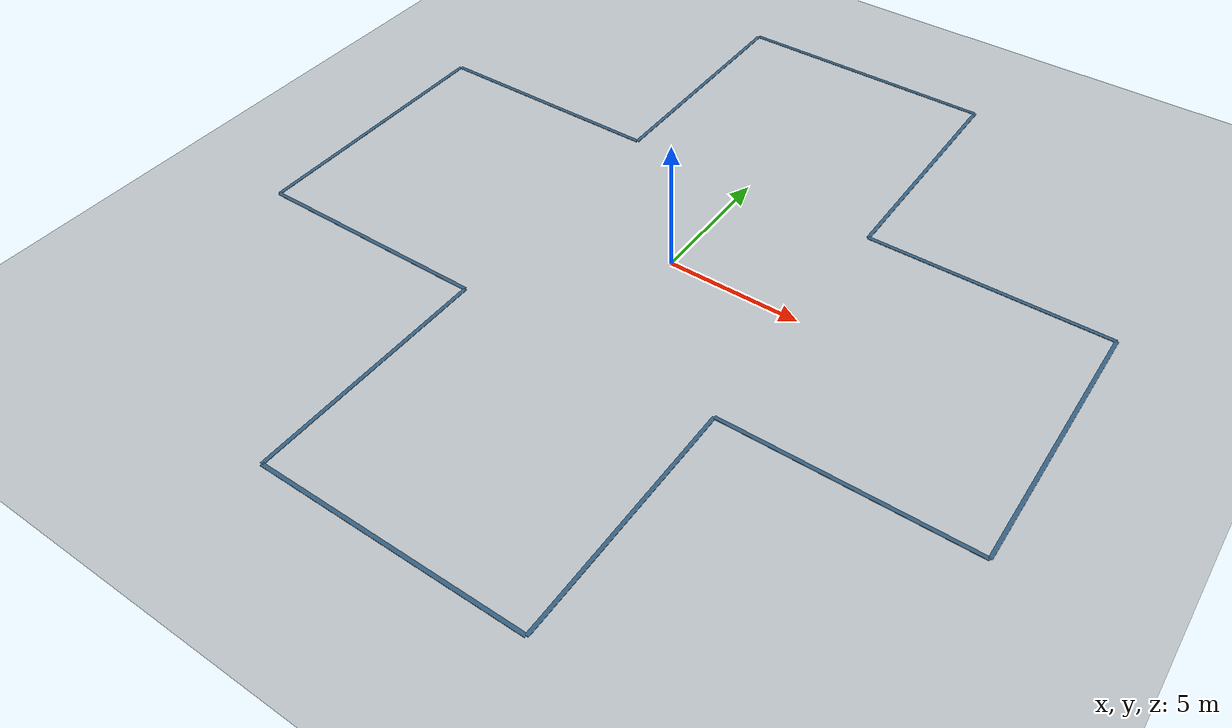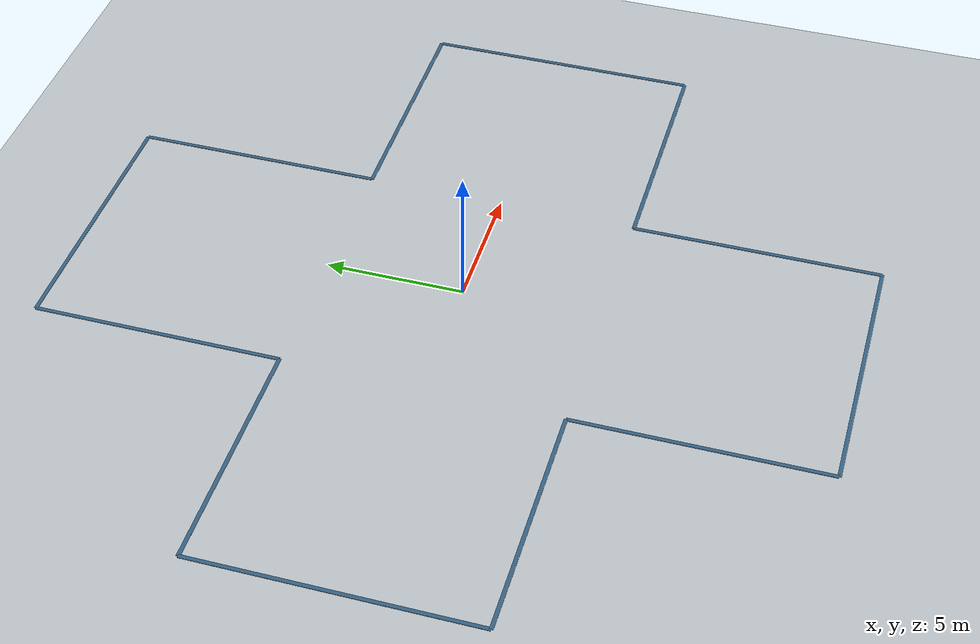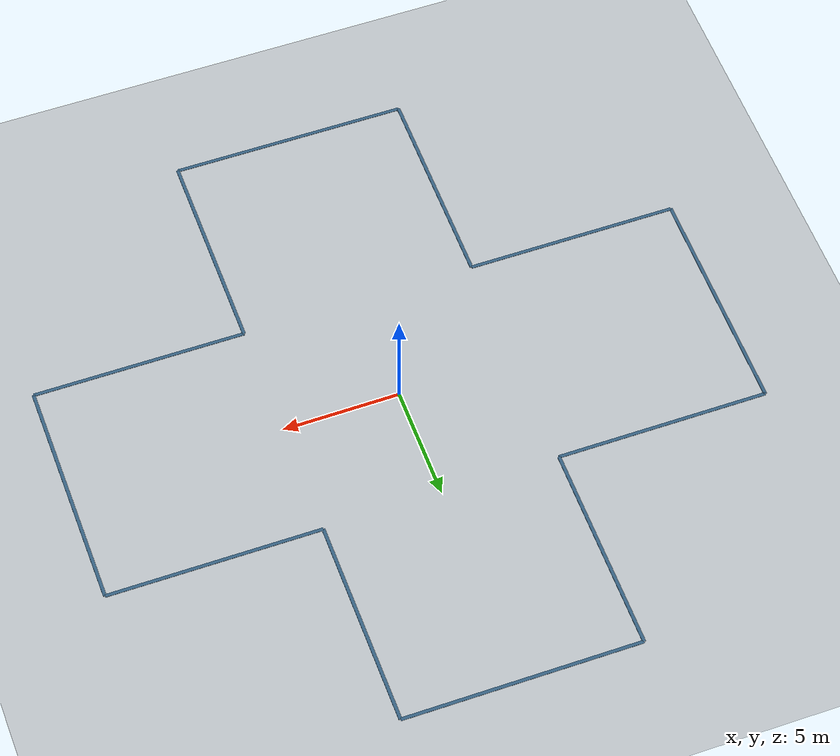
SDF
<sdf version="1.8">
 <world name="swarm_world">
  <model name="ground_plane">
   <static>true</static>
   <link name="link">
    <collision name="collision">
     <geometry><plane><normal>0 0 1</normal><size>100 100</size></plane></geometry>
    </collision>
    <visual name="visual">
     <geometry><plane><normal>0 0 1</normal><size>100 100</size></plane></geometry>
     <material>
      <ambient>0.70 0.72 0.74 1.0</ambient>
      <diffuse>0.70 0.72 0.74 1.0</diffuse>
      <specular>0.1 0.1 0.1 1.0</specular>
     </material>
    </visual>
   </link>
  </model>
  <model name="region_perimeter_border_plus">
   <static>true</static>
   <link name="border_link">
    <visual name="border_edge_0">
     <pose>0.0000 -14.0000 0.015 0 0 0.0000</pose>
     <geometry><box><size>10.0000 0.14 0.025</size></box></geometry>
     <material>
      <ambient>0.20 0.36 0.48 1.0</ambient>
      <diffuse>0.20 0.36 0.48 1.0</diffuse>
      <specular>0.25 0.25 0.25 1.0</specular>
     </material>
    </visual>
    <visual name="border_edge_1">
     <pose>5.0000 -9.5000 0.015 0 0 1.5708</pose>
     <geometry><box><size>9.0000 0.14 0.025</size></box></geometry>
     <material>
      <ambient>0.20 0.36 0.48 1.0</ambient>
      <diffuse>0.20 0.36 0.48 1.0</diffuse>
      <specular>0.25 0.25 0.25 1.0</specular>
     </material>
    </visual>
    <visual name="border_edge_2">
     <pose>9.5000 -5.0000 0.015 0 0 0.0000</pose>
     <geometry><box><size>9.0000 0.14 0.025</size></box></geometry>
     <material>
      <ambient>0.20 0.36 0.48 1.0</ambient>
      <diffuse>0.20 0.36 0.48 1.0</diffuse>
      <specular>0.25 0.25 0.25 1.0</specular>
     </material>
    </visual>
    <visual name="border_edge_3">
     <pose>14.0000 0.0000 0.015 0 0 1.5708</pose>
     <geometry><box><size>10.0000 0.14 0.025</size></box></geometry>
     <material>
      <ambient>0.20 0.36 0.48 1.0</ambient>
      <diffuse>0.20 0.36 0.48 1.0</diffuse>
      <specular>0.25 0.25 0.25 1.0</specular>
     </material>
    </visual>
    <visual name="border_edge_4">
     <pose>9.5000 5.0000 0.015 0 0 3.1416</pose>
     <geometry><box><size>9.0000 0.14 0.025</size></box></geometry>
     <material>
      <ambient>0.20 0.36 0.48 1.0</ambient>
      <diffuse>0.20 0.36 0.48 1.0</diffuse>
      <specular>0.25 0.25 0.25 1.0</specular>
     </material>
    </visual>
    <visual name="border_edge_5">
     <pose>5.0000 9.5000 0.015 0 0 1.5708</pose>
     <geometry><box><size>9.0000 0.14 0.025</size></box></geometry>
     <material>
      <ambient>0.20 0.36 0.48 1.0</ambient>
      <diffuse>0.20 0.36 0.48 1.0</diffuse>
      <specular>0.25 0.25 0.25 1.0</specular>
     </material>
    </visual>
    <visual name="border_edge_6">
     <pose>0.0000 14.0000 0.015 0 0 3.1416</pose>
     <geometry><box><size>10.0000 0.14 0.025</size></box></geometry>
     <material>
      <ambient>0.20 0.36 0.48 1.0</ambient>
      <diffuse>0.20 0.36 0.48 1.0</diffuse>
      <specular>0.25 0.25 0.25 1.0</specular>
     </material>
    </visual>
    <visual name="border_edge_7">
     <pose>-5.0000 9.5000 0.015 0 0 -1.5708</pose>
     <geometry><box><size>9.0000 0.14 0.025</size></box></geometry>
     <material>
      <ambient>0.20 0.36 0.48 1.0</ambient>
      <diffuse>0.20 0.36 0.48 1.0</diffuse>
      <specular>0.25 0.25 0.25 1.0</specular>
     </material>
    </visual>
    <visual name="border_edge_8">
     <pose>-9.5000 5.0000 0.015 0 0 3.1416</pose>
     <geometry><box><size>9.0000 0.14 0.025</size></box></geometry>
     <material>
      <ambient>0.20 0.36 0.48 1.0</ambient>
      <diffuse>0.20 0.36 0.48 1.0</diffuse>
      <specular>0.25 0.25 0.25 1.0</specular>
     </material>
    </visual>
    <visual name="border_edge_9">
     <pose>-14.0000 0.0000 0.015 0 0 -1.5708</pose>
     <geometry><box><size>10.0000 0.14 0.025</size></box></geometry>
     <material>
      <ambient>0.20 0.36 0.48 1.0</ambient>
      <diffuse>0.20 0.36 0.48 1.0</diffuse>
      <specular>0.25 0.25 0.25 1.0</specular>
     </material>
    </visual>
    <visual name="border_edge_10">
     <pose>-9.5000 -5.0000 0.015 0 0 0.0000</pose>
     <geometry><box><size>9.0000 0.14 0.025</size></box></geometry>
     <material>
      <ambient>0.20 0.36 0.48 1.0</ambient>
      <diffuse>0.20 0.36 0.48 1.0</diffuse>
      <specular>0.25 0.25 0.25 1.0</specular>
     </material>
    </visual>
    <visual name="border_edge_11">
     <pose>-5.0000 -9.5000 0.015 0 0 -1.5708</pose>
     <geometry><box><size>9.0000 0.14 0.025</size></box></geometry>
     <material>
      <ambient>0.20 0.36 0.48 1.0</ambient>
      <diffuse>0.20 0.36 0.48 1.0</diffuse>
      <specular>0.25 0.25 0.25 1.0</specular>
     </material>
    </visual>
   </link>
  </model>
 </world>
</sdf>
